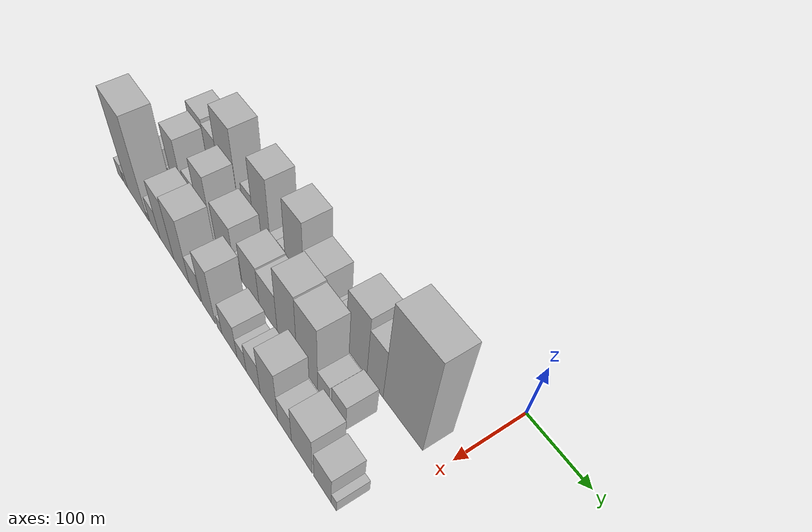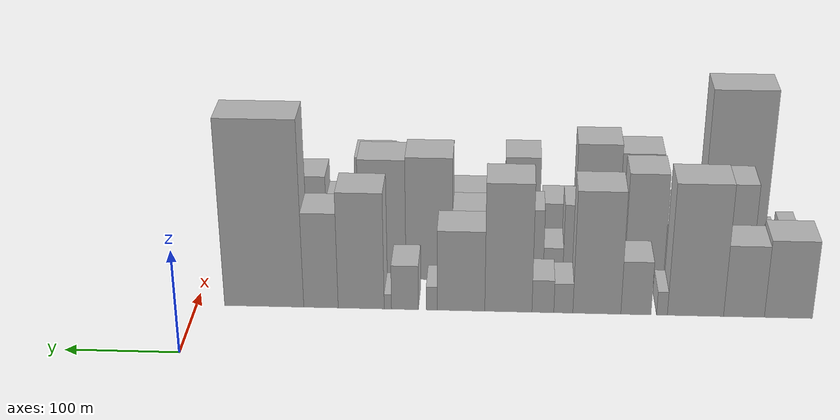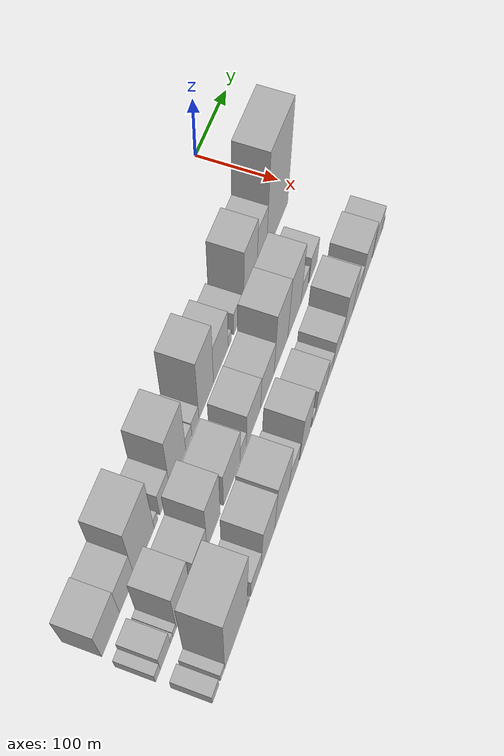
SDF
<sdf version="1.6">
 <world name="default">
  <model name="building_1">
   <static>1</static>
   <pose>100.0000 -534.6059 0 0.000000 0.000000 0.000000</pose>
   <link name="link">
    <pose>0 0 39.00 0 0 0</pose>
    <collision name="collision"><geometry><box><size>40.0000 42.7883 78.0000</size></box></geometry></collision>
    <visual name="visual">
     <cast_shadows>0</cast_shadows>
     <geometry><box><size>40.0000 42.7883 78.0000</size></box></geometry>
     <material>
      <script>
       <uri>model://HANNAS_wall/materials/scripts</uri>
       <uri>model://HANNAS_wall/materials/textures</uri>
       <name>vrc/HANNAS_wall</name>
      </script>
     </material>
    </visual>
   </link>
  </model>
  <model name="building_2">
   <static>1</static>
   <pose>100.0000 -495.0071 0 0.000000 0.000000 0.000000</pose>
   <link name="link">
    <pose>0 0 36.00 0 0 0</pose>
    <collision name="collision"><geometry><box><size>40.0000 36.4093 72.0000</size></box></geometry></collision>
    <visual name="visual">
     <cast_shadows>0</cast_shadows>
     <geometry><box><size>40.0000 36.4093 72.0000</size></box></geometry>
     <material>
      <script>
       <uri>model://HANNAS_wall/materials/scripts</uri>
       <uri>model://HANNAS_wall/materials/textures</uri>
       <name>vrc/HANNAS_wall</name>
      </script>
     </material>
    </visual>
   </link>
  </model>
  <model name="building_3">
   <static>1</static>
   <pose>100.0000 -451.6534 0 0.000000 0.000000 0.000000</pose>
   <link name="link">
    <pose>0 0 66.00 0 0 0</pose>
    <collision name="collision"><geometry><box><size>40.0000 50.2981 132.0000</size></box></geometry></collision>
    <visual name="visual">
     <cast_shadows>0</cast_shadows>
     <geometry><box><size>40.0000 50.2981 132.0000</size></box></geometry>
     <material>
      <script>
       <uri>model://HANNAS_wall/materials/scripts</uri>
       <uri>model://HANNAS_wall/materials/textures</uri>
       <name>vrc/HANNAS_wall</name>
      </script>
     </material>
    </visual>
   </link>
  </model>
  <model name="building_4">
   <static>1</static>
   <pose>100.0000 -421.6903 0 0.000000 0.000000 0.000000</pose>
   <link name="link">
    <pose>0 0 12.00 0 0 0</pose>
    <collision name="collision"><geometry><box><size>40.0000 9.6282 24.0000</size></box></geometry></collision>
    <visual name="visual">
     <cast_shadows>0</cast_shadows>
     <geometry><box><size>40.0000 9.6282 24.0000</size></box></geometry>
     <material>
      <script>
       <uri>model://HANNAS_wall/materials/scripts</uri>
       <uri>model://HANNAS_wall/materials/textures</uri>
       <name>vrc/HANNAS_wall</name>
      </script>
     </material>
    </visual>
   </link>
  </model>
  <model name="building_5">
   <static>1</static>
   <pose>100.0000 -398.3272 0 0.000000 0.000000 0.000000</pose>
   <link name="link">
    <pose>0 0 27.00 0 0 0</pose>
    <collision name="collision"><geometry><box><size>40.0000 27.0980 54.0000</size></box></geometry></collision>
    <visual name="visual">
     <cast_shadows>0</cast_shadows>
     <geometry><box><size>40.0000 27.0980 54.0000</size></box></geometry>
     <material>
      <script>
       <uri>model://HANNAS_wall/materials/scripts</uri>
       <uri>model://HANNAS_wall/materials/textures</uri>
       <name>vrc/HANNAS_wall</name>
      </script>
     </material>
    </visual>
   </link>
  </model>
  <model name="building_6">
   <static>1</static>
   <pose>100.0000 -363.2109 0 0.000000 0.000000 0.000000</pose>
   <link name="link">
    <pose>0 0 61.50 0 0 0</pose>
    <collision name="collision"><geometry><box><size>40.0000 43.1346 123.0000</size></box></geometry></collision>
    <visual name="visual">
     <cast_shadows>0</cast_shadows>
     <geometry><box><size>40.0000 43.1346 123.0000</size></box></geometry>
     <material>
      <script>
       <uri>model://HANNAS_wall/materials/scripts</uri>
       <uri>model://HANNAS_wall/materials/textures</uri>
       <name>vrc/HANNAS_wall</name>
      </script>
     </material>
    </visual>
   </link>
  </model>
  <model name="building_7">
   <static>1</static>
   <pose>100.0000 -333.0880 0 0.000000 0.000000 0.000000</pose>
   <link name="link">
    <pose>0 0 15.00 0 0 0</pose>
    <collision name="collision"><geometry><box><size>40.0000 17.1113 30.0000</size></box></geometry></collision>
    <visual name="visual">
     <cast_shadows>0</cast_shadows>
     <geometry><box><size>40.0000 17.1113 30.0000</size></box></geometry>
     <material>
      <script>
       <uri>model://HANNAS_wall/materials/scripts</uri>
       <uri>model://HANNAS_wall/materials/textures</uri>
       <name>vrc/HANNAS_wall</name>
      </script>
     </material>
    </visual>
   </link>
  </model>
  <model name="building_8">
   <static>1</static>
   <pose>100.0000 -314.6613 0 0.000000 0.000000 0.000000</pose>
   <link name="link">
    <pose>0 0 16.50 0 0 0</pose>
    <collision name="collision"><geometry><box><size>40.0000 19.7421 33.0000</size></box></geometry></collision>
    <visual name="visual">
     <cast_shadows>0</cast_shadows>
     <geometry><box><size>40.0000 19.7421 33.0000</size></box></geometry>
     <material>
      <script>
       <uri>model://HANNAS_wall/materials/scripts</uri>
       <uri>model://HANNAS_wall/materials/textures</uri>
       <name>vrc/HANNAS_wall</name>
      </script>
     </material>
    </visual>
   </link>
  </model>
  <model name="building_9">
   <static>1</static>
   <pose>100.0000 -283.5166 0 0.000000 0.000000 0.000000</pose>
   <link name="link">
    <pose>0 0 64.50 0 0 0</pose>
    <collision name="collision"><geometry><box><size>40.0000 42.5474 129.0000</size></box></geometry></collision>
    <visual name="visual">
     <cast_shadows>0</cast_shadows>
     <geometry><box><size>40.0000 42.5474 129.0000</size></box></geometry>
     <material>
      <script>
       <uri>model://HANNAS_wall/materials/scripts</uri>
       <uri>model://HANNAS_wall/materials/textures</uri>
       <name>vrc/HANNAS_wall</name>
      </script>
     </material>
    </visual>
   </link>
  </model>
  <model name="building_10">
   <static>1</static>
   <pose>100.0000 -240.6432 0 0.000000 0.000000 0.000000</pose>
   <link name="link">
    <pose>0 0 40.50 0 0 0</pose>
    <collision name="collision"><geometry><box><size>40.0000 43.1994 81.0000</size></box></geometry></collision>
    <visual name="visual">
     <cast_shadows>0</cast_shadows>
     <geometry><box><size>40.0000 43.1994 81.0000</size></box></geometry>
     <material>
      <script>
       <uri>model://HANNAS_wall/materials/scripts</uri>
       <uri>model://HANNAS_wall/materials/textures</uri>
       <name>vrc/HANNAS_wall</name>
      </script>
     </material>
    </visual>
   </link>
  </model>
  <model name="building_11">
   <static>1</static>
   <pose>100.0000 -214.1174 0 0.000000 0.000000 0.000000</pose>
   <link name="link">
    <pose>0 0 12.00 0 0 0</pose>
    <collision name="collision"><geometry><box><size>40.0000 9.8522 24.0000</size></box></geometry></collision>
    <visual name="visual">
     <cast_shadows>0</cast_shadows>
     <geometry><box><size>40.0000 9.8522 24.0000</size></box></geometry>
     <material>
      <script>
       <uri>model://HANNAS_wall/materials/scripts</uri>
       <uri>model://HANNAS_wall/materials/textures</uri>
       <name>vrc/HANNAS_wall</name>
      </script>
     </material>
    </visual>
   </link>
  </model>
  <model name="building_12">
   <static>1</static>
   <pose>100.0000 -189.9528 0 0.000000 0.000000 0.000000</pose>
   <link name="link">
    <pose>0 0 22.50 0 0 0</pose>
    <collision name="collision"><geometry><box><size>40.0000 24.4770 45.0000</size></box></geometry></collision>
    <visual name="visual">
     <cast_shadows>0</cast_shadows>
     <geometry><box><size>40.0000 24.4770 45.0000</size></box></geometry>
     <material>
      <script>
       <uri>model://HANNAS_wall/materials/scripts</uri>
       <uri>model://HANNAS_wall/materials/textures</uri>
       <name>vrc/HANNAS_wall</name>
      </script>
     </material>
    </visual>
   </link>
  </model>
  <model name="building_13">
   <static>1</static>
   <pose>100.0000 -174.4072 0 0.000000 0.000000 0.000000</pose>
   <link name="link">
    <pose>0 0 7.50 0 0 0</pose>
    <collision name="collision"><geometry><box><size>40.0000 6.6142 15.0000</size></box></geometry></collision>
    <visual name="visual">
     <cast_shadows>0</cast_shadows>
     <geometry><box><size>40.0000 6.6142 15.0000</size></box></geometry>
     <material>
      <script>
       <uri>model://HANNAS_wall/materials/scripts</uri>
       <uri>model://HANNAS_wall/materials/textures</uri>
       <name>vrc/HANNAS_wall</name>
      </script>
     </material>
    </visual>
   </link>
  </model>
  <model name="building_14">
   <static>1</static>
   <pose>100.0000 -150.1791 0 0.000000 0.000000 0.000000</pose>
   <link name="link">
    <pose>0 0 58.50 0 0 0</pose>
    <collision name="collision"><geometry><box><size>40.0000 41.8419 117.0000</size></box></geometry></collision>
    <visual name="visual">
     <cast_shadows>0</cast_shadows>
     <geometry><box><size>40.0000 41.8419 117.0000</size></box></geometry>
     <material>
      <script>
       <uri>model://HANNAS_wall/materials/scripts</uri>
       <uri>model://HANNAS_wall/materials/textures</uri>
       <name>vrc/HANNAS_wall</name>
      </script>
     </material>
    </visual>
   </link>
  </model>
  <model name="building_15">
   <static>1</static>
   <pose>100.0000 -113.5795 0 0.000000 0.000000 0.000000</pose>
   <link name="link">
    <pose>0 0 48.00 0 0 0</pose>
    <collision name="collision"><geometry><box><size>40.0000 31.3573 96.0000</size></box></geometry></collision>
    <visual name="visual">
     <cast_shadows>0</cast_shadows>
     <geometry><box><size>40.0000 31.3573 96.0000</size></box></geometry>
     <material>
      <script>
       <uri>model://HANNAS_wall/materials/scripts</uri>
       <uri>model://HANNAS_wall/materials/textures</uri>
       <name>vrc/HANNAS_wall</name>
      </script>
     </material>
    </visual>
   </link>
  </model>
  <model name="building_16">
   <static>1</static>
   <pose>100.0000 -61.7813 0 0.000000 0.000000 0.000000</pose>
   <link name="link">
    <pose>0 0 93.00 0 0 0</pose>
    <collision name="collision"><geometry><box><size>40.0000 72.2393 186.0000</size></box></geometry></collision>
    <visual name="visual">
     <cast_shadows>0</cast_shadows>
     <geometry><box><size>40.0000 72.2393 186.0000</size></box></geometry>
     <material>
      <script>
       <uri>model://HANNAS_wall/materials/scripts</uri>
       <uri>model://HANNAS_wall/materials/textures</uri>
       <name>vrc/HANNAS_wall</name>
      </script>
     </material>
    </visual>
   </link>
  </model>
  <model name="building_34">
   <static>1</static>
   <pose>155.0000 -554.1464 0 0.000000 0.000000 0.000000</pose>
   <link name="link">
    <pose>0 0 13.50 0 0 0</pose>
    <collision name="collision"><geometry><box><size>40.0000 11.7072 27.0000</size></box></geometry></collision>
    <visual name="visual">
     <cast_shadows>0</cast_shadows>
     <geometry><box><size>40.0000 11.7072 27.0000</size></box></geometry>
     <material>
      <script>
       <uri>model://HANNAS_wall/materials/scripts</uri>
       <uri>model://HANNAS_wall/materials/textures</uri>
       <name>vrc/HANNAS_wall</name>
      </script>
     </material>
    </visual>
   </link>
  </model>
  <model name="building_35">
   <static>1</static>
   <pose>155.0000 -535.8460 0 0.000000 0.000000 0.000000</pose>
   <link name="link">
    <pose>0 0 22.50 0 0 0</pose>
    <collision name="collision"><geometry><box><size>40.0000 24.8936 45.0000</size></box></geometry></collision>
    <visual name="visual">
     <cast_shadows>0</cast_shadows>
     <geometry><box><size>40.0000 24.8936 45.0000</size></box></geometry>
     <material>
      <script>
       <uri>model://HANNAS_wall/materials/scripts</uri>
       <uri>model://HANNAS_wall/materials/textures</uri>
       <name>vrc/HANNAS_wall</name>
      </script>
     </material>
    </visual>
   </link>
  </model>
  <model name="building_36">
   <static>1</static>
   <pose>155.0000 -520.1779 0 0.000000 0.000000 0.000000</pose>
   <link name="link">
    <pose>0 0 7.50 0 0 0</pose>
    <collision name="collision"><geometry><box><size>40.0000 6.4425 15.0000</size></box></geometry></collision>
    <visual name="visual">
     <cast_shadows>0</cast_shadows>
     <geometry><box><size>40.0000 6.4425 15.0000</size></box></geometry>
     <material>
      <script>
       <uri>model://HANNAS_wall/materials/scripts</uri>
       <uri>model://HANNAS_wall/materials/textures</uri>
       <name>vrc/HANNAS_wall</name>
      </script>
     </material>
    </visual>
   </link>
  </model>
  <model name="building_37">
   <static>1</static>
   <pose>155.0000 -512.6137 0 0.000000 0.000000 0.000000</pose>
   <link name="link">
    <pose>0 0 9.00 0 0 0</pose>
    <collision name="collision"><geometry><box><size>40.0000 8.6860 18.0000</size></box></geometry></collision>
    <visual name="visual">
     <cast_shadows>0</cast_shadows>
     <geometry><box><size>40.0000 8.6860 18.0000</size></box></geometry>
     <material>
      <script>
       <uri>model://HANNAS_wall/materials/scripts</uri>
       <uri>model://HANNAS_wall/materials/textures</uri>
       <name>vrc/HANNAS_wall</name>
      </script>
     </material>
    </visual>
   </link>
  </model>
  <model name="building_38">
   <static>1</static>
   <pose>155.0000 -490.0451 0 0.000000 0.000000 0.000000</pose>
   <link name="link">
    <pose>0 0 52.50 0 0 0</pose>
    <collision name="collision"><geometry><box><size>40.0000 36.4512 105.0000</size></box></geometry></collision>
    <visual name="visual">
     <cast_shadows>0</cast_shadows>
     <geometry><box><size>40.0000 36.4512 105.0000</size></box></geometry>
     <material>
      <script>
       <uri>model://HANNAS_wall/materials/scripts</uri>
       <uri>model://HANNAS_wall/materials/textures</uri>
       <name>vrc/HANNAS_wall</name>
      </script>
     </material>
    </visual>
   </link>
  </model>
  <model name="building_39">
   <static>1</static>
   <pose>155.0000 -444.6192 0 0.000000 0.000000 0.000000</pose>
   <link name="link">
    <pose>0 0 31.50 0 0 0</pose>
    <collision name="collision"><geometry><box><size>40.0000 34.4006 63.0000</size></box></geometry></collision>
    <visual name="visual">
     <cast_shadows>0</cast_shadows>
     <geometry><box><size>40.0000 34.4006 63.0000</size></box></geometry>
     <material>
      <script>
       <uri>model://HANNAS_wall/materials/scripts</uri>
       <uri>model://HANNAS_wall/materials/textures</uri>
       <name>vrc/HANNAS_wall</name>
      </script>
     </material>
    </visual>
   </link>
  </model>
  <model name="building_40">
   <static>1</static>
   <pose>155.0000 -409.1548 0 0.000000 0.000000 0.000000</pose>
   <link name="link">
    <pose>0 0 57.00 0 0 0</pose>
    <collision name="collision"><geometry><box><size>40.0000 36.5283 114.0000</size></box></geometry></collision>
    <visual name="visual">
     <cast_shadows>0</cast_shadows>
     <geometry><box><size>40.0000 36.5283 114.0000</size></box></geometry>
     <material>
      <script>
       <uri>model://HANNAS_wall/materials/scripts</uri>
       <uri>model://HANNAS_wall/materials/textures</uri>
       <name>vrc/HANNAS_wall</name>
      </script>
     </material>
    </visual>
   </link>
  </model>
  <model name="building_41">
   <static>1</static>
   <pose>155.0000 -357.8791 0 0.000000 0.000000 0.000000</pose>
   <link name="link">
    <pose>0 0 40.50 0 0 0</pose>
    <collision name="collision"><geometry><box><size>40.0000 48.0231 81.0000</size></box></geometry></collision>
    <visual name="visual">
     <cast_shadows>0</cast_shadows>
     <geometry><box><size>40.0000 48.0231 81.0000</size></box></geometry>
     <material>
      <script>
       <uri>model://HANNAS_wall/materials/scripts</uri>
       <uri>model://HANNAS_wall/materials/textures</uri>
       <name>vrc/HANNAS_wall</name>
      </script>
     </material>
    </visual>
   </link>
  </model>
  <model name="building_42">
   <static>1</static>
   <pose>155.0000 -324.7988 0 0.000000 0.000000 0.000000</pose>
   <link name="link">
    <pose>0 0 18.00 0 0 0</pose>
    <collision name="collision"><geometry><box><size>40.0000 18.1375 36.0000</size></box></geometry></collision>
    <visual name="visual">
     <cast_shadows>0</cast_shadows>
     <geometry><box><size>40.0000 18.1375 36.0000</size></box></geometry>
     <material>
      <script>
       <uri>model://HANNAS_wall/materials/scripts</uri>
       <uri>model://HANNAS_wall/materials/textures</uri>
       <name>vrc/HANNAS_wall</name>
      </script>
     </material>
    </visual>
   </link>
  </model>
  <model name="building_43">
   <static>1</static>
   <pose>155.0000 -294.3853 0 0.000000 0.000000 0.000000</pose>
   <link name="link">
    <pose>0 0 37.50 0 0 0</pose>
    <collision name="collision"><geometry><box><size>40.0000 42.6894 75.0000</size></box></geometry></collision>
    <visual name="visual">
     <cast_shadows>0</cast_shadows>
     <geometry><box><size>40.0000 42.6894 75.0000</size></box></geometry>
     <material>
      <script>
       <uri>model://HANNAS_wall/materials/scripts</uri>
       <uri>model://HANNAS_wall/materials/textures</uri>
       <name>vrc/HANNAS_wall</name>
      </script>
     </material>
    </visual>
   </link>
  </model>
  <model name="building_44">
   <static>1</static>
   <pose>155.0000 -252.0402 0 0.000000 0.000000 0.000000</pose>
   <link name="link">
    <pose>0 0 36.00 0 0 0</pose>
    <collision name="collision"><geometry><box><size>40.0000 42.0008 72.0000</size></box></geometry></collision>
    <visual name="visual">
     <cast_shadows>0</cast_shadows>
     <geometry><box><size>40.0000 42.0008 72.0000</size></box></geometry>
     <material>
      <script>
       <uri>model://HANNAS_wall/materials/scripts</uri>
       <uri>model://HANNAS_wall/materials/textures</uri>
       <name>vrc/HANNAS_wall</name>
      </script>
     </material>
    </visual>
   </link>
  </model>
  <model name="building_45">
   <static>1</static>
   <pose>155.0000 -209.2373 0 0.000000 0.000000 0.000000</pose>
   <link name="link">
    <pose>0 0 63.00 0 0 0</pose>
    <collision name="collision"><geometry><box><size>40.0000 43.6050 126.0000</size></box></geometry></collision>
    <visual name="visual">
     <cast_shadows>0</cast_shadows>
     <geometry><box><size>40.0000 43.6050 126.0000</size></box></geometry>
     <material>
      <script>
       <uri>model://HANNAS_wall/materials/scripts</uri>
       <uri>model://HANNAS_wall/materials/textures</uri>
       <name>vrc/HANNAS_wall</name>
      </script>
     </material>
    </visual>
   </link>
  </model>
  <model name="building_46">
   <static>1</static>
   <pose>155.0000 -165.6142 0 0.000000 0.000000 0.000000</pose>
   <link name="link">
    <pose>0 0 61.50 0 0 0</pose>
    <collision name="collision"><geometry><box><size>40.0000 43.6411 123.0000</size></box></geometry></collision>
    <visual name="visual">
     <cast_shadows>0</cast_shadows>
     <geometry><box><size>40.0000 43.6411 123.0000</size></box></geometry>
     <material>
      <script>
       <uri>model://HANNAS_wall/materials/scripts</uri>
       <uri>model://HANNAS_wall/materials/textures</uri>
       <name>vrc/HANNAS_wall</name>
      </script>
     </material>
    </visual>
   </link>
  </model>
  <model name="building_47">
   <static>1</static>
   <pose>155.0000 -131.7472 0 0.000000 0.000000 0.000000</pose>
   <link name="link">
    <pose>0 0 21.00 0 0 0</pose>
    <collision name="collision"><geometry><box><size>40.0000 24.0929 42.0000</size></box></geometry></collision>
    <visual name="visual">
     <cast_shadows>0</cast_shadows>
     <geometry><box><size>40.0000 24.0929 42.0000</size></box></geometry>
     <material>
      <script>
       <uri>model://HANNAS_wall/materials/scripts</uri>
       <uri>model://HANNAS_wall/materials/textures</uri>
       <name>vrc/HANNAS_wall</name>
      </script>
     </material>
    </visual>
   </link>
  </model>
  <model name="building_48">
   <static>1</static>
   <pose>155.0000 -101.8067 0 0.000000 0.000000 0.000000</pose>
   <link name="link">
    <pose>0 0 25.50 0 0 0</pose>
    <collision name="collision"><geometry><box><size>40.0000 27.7881 51.0000</size></box></geometry></collision>
    <visual name="visual">
     <cast_shadows>0</cast_shadows>
     <geometry><box><size>40.0000 27.7881 51.0000</size></box></geometry>
     <material>
      <script>
       <uri>model://HANNAS_wall/materials/scripts</uri>
       <uri>model://HANNAS_wall/materials/textures</uri>
       <name>vrc/HANNAS_wall</name>
      </script>
     </material>
    </visual>
   </link>
  </model>
  <model name="building_63">
   <static>1</static>
   <pose>210.0000 -551.4670 0 0.000000 0.000000 0.000000</pose>
   <link name="link">
    <pose>0 0 15.00 0 0 0</pose>
    <collision name="collision"><geometry><box><size>40.0000 17.0660 30.0000</size></box></geometry></collision>
    <visual name="visual">
     <cast_shadows>0</cast_shadows>
     <geometry><box><size>40.0000 17.0660 30.0000</size></box></geometry>
     <material>
      <script>
       <uri>model://HANNAS_wall/materials/scripts</uri>
       <uri>model://HANNAS_wall/materials/textures</uri>
       <name>vrc/HANNAS_wall</name>
      </script>
     </material>
    </visual>
   </link>
  </model>
  <model name="building_64">
   <static>1</static>
   <pose>210.0000 -533.3005 0 0.000000 0.000000 0.000000</pose>
   <link name="link">
    <pose>0 0 12.00 0 0 0</pose>
    <collision name="collision"><geometry><box><size>40.0000 11.2670 24.0000</size></box></geometry></collision>
    <visual name="visual">
     <cast_shadows>0</cast_shadows>
     <geometry><box><size>40.0000 11.2670 24.0000</size></box></geometry>
     <material>
      <script>
       <uri>model://HANNAS_wall/materials/scripts</uri>
       <uri>model://HANNAS_wall/materials/textures</uri>
       <name>vrc/HANNAS_wall</name>
      </script>
     </material>
    </visual>
   </link>
  </model>
  <model name="building_65">
   <static>1</static>
   <pose>210.0000 -497.6394 0 0.000000 0.000000 0.000000</pose>
   <link name="link">
    <pose>0 0 87.00 0 0 0</pose>
    <collision name="collision"><geometry><box><size>40.0000 60.0551 174.0000</size></box></geometry></collision>
    <visual name="visual">
     <cast_shadows>0</cast_shadows>
     <geometry><box><size>40.0000 60.0551 174.0000</size></box></geometry>
     <material>
      <script>
       <uri>model://HANNAS_wall/materials/scripts</uri>
       <uri>model://HANNAS_wall/materials/textures</uri>
       <name>vrc/HANNAS_wall</name>
      </script>
     </material>
    </visual>
   </link>
  </model>
  <model name="building_66">
   <static>1</static>
   <pose>210.0000 -464.4536 0 0.000000 0.000000 0.000000</pose>
   <link name="link">
    <pose>0 0 7.50 0 0 0</pose>
    <collision name="collision"><geometry><box><size>40.0000 6.3166 15.0000</size></box></geometry></collision>
    <visual name="visual">
     <cast_shadows>0</cast_shadows>
     <geometry><box><size>40.0000 6.3166 15.0000</size></box></geometry>
     <material>
      <script>
       <uri>model://HANNAS_wall/materials/scripts</uri>
       <uri>model://HANNAS_wall/materials/textures</uri>
       <name>vrc/HANNAS_wall</name>
      </script>
     </material>
    </visual>
   </link>
  </model>
  <model name="building_67">
   <static>1</static>
   <pose>210.0000 -442.6400 0 0.000000 0.000000 0.000000</pose>
   <link name="link">
    <pose>0 0 25.50 0 0 0</pose>
    <collision name="collision"><geometry><box><size>40.0000 29.3106 51.0000</size></box></geometry></collision>
    <visual name="visual">
     <cast_shadows>0</cast_shadows>
     <geometry><box><size>40.0000 29.3106 51.0000</size></box></geometry>
     <material>
      <script>
       <uri>model://HANNAS_wall/materials/scripts</uri>
       <uri>model://HANNAS_wall/materials/textures</uri>
       <name>vrc/HANNAS_wall</name>
      </script>
     </material>
    </visual>
   </link>
  </model>
  <model name="building_68">
   <static>1</static>
   <pose>210.0000 -408.2236 0 0.000000 0.000000 0.000000</pose>
   <link name="link">
    <pose>0 0 54.00 0 0 0</pose>
    <collision name="collision"><geometry><box><size>40.0000 39.5223 108.0000</size></box></geometry></collision>
    <visual name="visual">
     <cast_shadows>0</cast_shadows>
     <geometry><box><size>40.0000 39.5223 108.0000</size></box></geometry>
     <material>
      <script>
       <uri>model://HANNAS_wall/materials/scripts</uri>
       <uri>model://HANNAS_wall/materials/textures</uri>
       <name>vrc/HANNAS_wall</name>
      </script>
     </material>
    </visual>
   </link>
  </model>
  <model name="building_69">
   <static>1</static>
   <pose>210.0000 -367.4800 0 0.000000 0.000000 0.000000</pose>
   <link name="link">
    <pose>0 0 58.50 0 0 0</pose>
    <collision name="collision"><geometry><box><size>40.0000 41.9648 117.0000</size></box></geometry></collision>
    <visual name="visual">
     <cast_shadows>0</cast_shadows>
     <geometry><box><size>40.0000 41.9648 117.0000</size></box></geometry>
     <material>
      <script>
       <uri>model://HANNAS_wall/materials/scripts</uri>
       <uri>model://HANNAS_wall/materials/textures</uri>
       <name>vrc/HANNAS_wall</name>
      </script>
     </material>
    </visual>
   </link>
  </model>
  <model name="building_70">
   <static>1</static>
   <pose>210.0000 -331.0093 0 0.000000 0.000000 0.000000</pose>
   <link name="link">
    <pose>0 0 27.00 0 0 0</pose>
    <collision name="collision"><geometry><box><size>40.0000 30.9766 54.0000</size></box></geometry></collision>
    <visual name="visual">
     <cast_shadows>0</cast_shadows>
     <geometry><box><size>40.0000 30.9766 54.0000</size></box></geometry>
     <material>
      <script>
       <uri>model://HANNAS_wall/materials/scripts</uri>
       <uri>model://HANNAS_wall/materials/textures</uri>
       <name>vrc/HANNAS_wall</name>
      </script>
     </material>
    </visual>
   </link>
  </model>
  <model name="building_71">
   <static>1</static>
   <pose>210.0000 -295.8694 0 0.000000 0.000000 0.000000</pose>
   <link name="link">
    <pose>0 0 51.00 0 0 0</pose>
    <collision name="collision"><geometry><box><size>40.0000 33.3031 102.0000</size></box></geometry></collision>
    <visual name="visual">
     <cast_shadows>0</cast_shadows>
     <geometry><box><size>40.0000 33.3031 102.0000</size></box></geometry>
     <material>
      <script>
       <uri>model://HANNAS_wall/materials/scripts</uri>
       <uri>model://HANNAS_wall/materials/textures</uri>
       <name>vrc/HANNAS_wall</name>
      </script>
     </material>
    </visual>
   </link>
  </model>
  <model name="building_72">
   <static>1</static>
   <pose>210.0000 -268.5393 0 0.000000 0.000000 0.000000</pose>
   <link name="link">
    <pose>0 0 12.00 0 0 0</pose>
    <collision name="collision"><geometry><box><size>40.0000 11.3571 24.0000</size></box></geometry></collision>
    <visual name="visual">
     <cast_shadows>0</cast_shadows>
     <geometry><box><size>40.0000 11.3571 24.0000</size></box></geometry>
     <material>
      <script>
       <uri>model://HANNAS_wall/materials/scripts</uri>
       <uri>model://HANNAS_wall/materials/textures</uri>
       <name>vrc/HANNAS_wall</name>
      </script>
     </material>
    </visual>
   </link>
  </model>
  <model name="building_73">
   <static>1</static>
   <pose>210.0000 -244.7300 0 0.000000 0.000000 0.000000</pose>
   <link name="link">
    <pose>0 0 31.50 0 0 0</pose>
    <collision name="collision"><geometry><box><size>40.0000 36.2616 63.0000</size></box></geometry></collision>
    <visual name="visual">
     <cast_shadows>0</cast_shadows>
     <geometry><box><size>40.0000 36.2616 63.0000</size></box></geometry>
     <material>
      <script>
       <uri>model://HANNAS_wall/materials/scripts</uri>
       <uri>model://HANNAS_wall/materials/textures</uri>
       <name>vrc/HANNAS_wall</name>
      </script>
     </material>
    </visual>
   </link>
  </model>
  <model name="building_74">
   <static>1</static>
   <pose>210.0000 -215.9005 0 0.000000 0.000000 0.000000</pose>
   <link name="link">
    <pose>0 0 19.50 0 0 0</pose>
    <collision name="collision"><geometry><box><size>40.0000 21.3973 39.0000</size></box></geometry></collision>
    <visual name="visual">
     <cast_shadows>0</cast_shadows>
     <geometry><box><size>40.0000 21.3973 39.0000</size></box></geometry>
     <material>
      <script>
       <uri>model://HANNAS_wall/materials/scripts</uri>
       <uri>model://HANNAS_wall/materials/textures</uri>
       <name>vrc/HANNAS_wall</name>
      </script>
     </material>
    </visual>
   </link>
  </model>
  <model name="building_75">
   <static>1</static>
   <pose>210.0000 -189.4502 0 0.000000 0.000000 0.000000</pose>
   <link name="link">
    <pose>0 0 30.00 0 0 0</pose>
    <collision name="collision"><geometry><box><size>40.0000 31.5033 60.0000</size></box></geometry></collision>
    <visual name="visual">
     <cast_shadows>0</cast_shadows>
     <geometry><box><size>40.0000 31.5033 60.0000</size></box></geometry>
     <material>
      <script>
       <uri>model://HANNAS_wall/materials/scripts</uri>
       <uri>model://HANNAS_wall/materials/textures</uri>
       <name>vrc/HANNAS_wall</name>
      </script>
     </material>
    </visual>
   </link>
  </model>
  <model name="building_76">
   <static>1</static>
   <pose>210.0000 -154.8219 0 0.000000 0.000000 0.000000</pose>
   <link name="link">
    <pose>0 0 49.50 0 0 0</pose>
    <collision name="collision"><geometry><box><size>40.0000 37.7534 99.0000</size></box></geometry></collision>
    <visual name="visual">
     <cast_shadows>0</cast_shadows>
     <geometry><box><size>40.0000 37.7534 99.0000</size></box></geometry>
     <material>
      <script>
       <uri>model://HANNAS_wall/materials/scripts</uri>
       <uri>model://HANNAS_wall/materials/textures</uri>
       <name>vrc/HANNAS_wall</name>
      </script>
     </material>
    </visual>
   </link>
  </model>
  <model name="building_77">
   <static>1</static>
   <pose>210.0000 -121.7146 0 0.000000 0.000000 0.000000</pose>
   <link name="link">
    <pose>0 0 27.00 0 0 0</pose>
    <collision name="collision"><geometry><box><size>40.0000 28.4612 54.0000</size></box></geometry></collision>
    <visual name="visual">
     <cast_shadows>0</cast_shadows>
     <geometry><box><size>40.0000 28.4612 54.0000</size></box></geometry>
     <material>
      <script>
       <uri>model://HANNAS_wall/materials/scripts</uri>
       <uri>model://HANNAS_wall/materials/textures</uri>
       <name>vrc/HANNAS_wall</name>
      </script>
     </material>
    </visual>
   </link>
  </model>
  <model name="building_78">
   <static>1</static>
   <pose>210.0000 -86.9576 0 0.000000 0.000000 0.000000</pose>
   <link name="link">
    <pose>0 0 39.00 0 0 0</pose>
    <collision name="collision"><geometry><box><size>40.0000 41.0529 78.0000</size></box></geometry></collision>
    <visual name="visual">
     <cast_shadows>0</cast_shadows>
     <geometry><box><size>40.0000 41.0529 78.0000</size></box></geometry>
     <material>
      <script>
       <uri>model://HANNAS_wall/materials/scripts</uri>
       <uri>model://HANNAS_wall/materials/textures</uri>
       <name>vrc/HANNAS_wall</name>
      </script>
     </material>
    </visual>
   </link>
  </model>
  <model name="building_79">
   <static>1</static>
   <pose>210.0000 -46.9816 0 0.000000 0.000000 0.000000</pose>
   <link name="link">
    <pose>0 0 28.50 0 0 0</pose>
    <collision name="collision"><geometry><box><size>40.0000 32.8990 57.0000</size></box></geometry></collision>
    <visual name="visual">
     <cast_shadows>0</cast_shadows>
     <geometry><box><size>40.0000 32.8990 57.0000</size></box></geometry>
     <material>
      <script>
       <uri>model://HANNAS_wall/materials/scripts</uri>
       <uri>model://HANNAS_wall/materials/textures</uri>
       <name>vrc/HANNAS_wall</name>
      </script>
     </material>
    </visual>
   </link>
  </model>
  <model name="building_80">
   <static>1</static>
   <pose>210.0000 -25.7105 0 0.000000 0.000000 0.000000</pose>
   <link name="link">
    <pose>0 0 12.00 0 0 0</pose>
    <collision name="collision"><geometry><box><size>40.0000 9.6433 24.0000</size></box></geometry></collision>
    <visual name="visual">
     <cast_shadows>0</cast_shadows>
     <geometry><box><size>40.0000 9.6433 24.0000</size></box></geometry>
     <material>
      <script>
       <uri>model://HANNAS_wall/materials/scripts</uri>
       <uri>model://HANNAS_wall/materials/textures</uri>
       <name>vrc/HANNAS_wall</name>
      </script>
     </material>
    </visual>
   </link>
  </model>
 </world>
</sdf>
